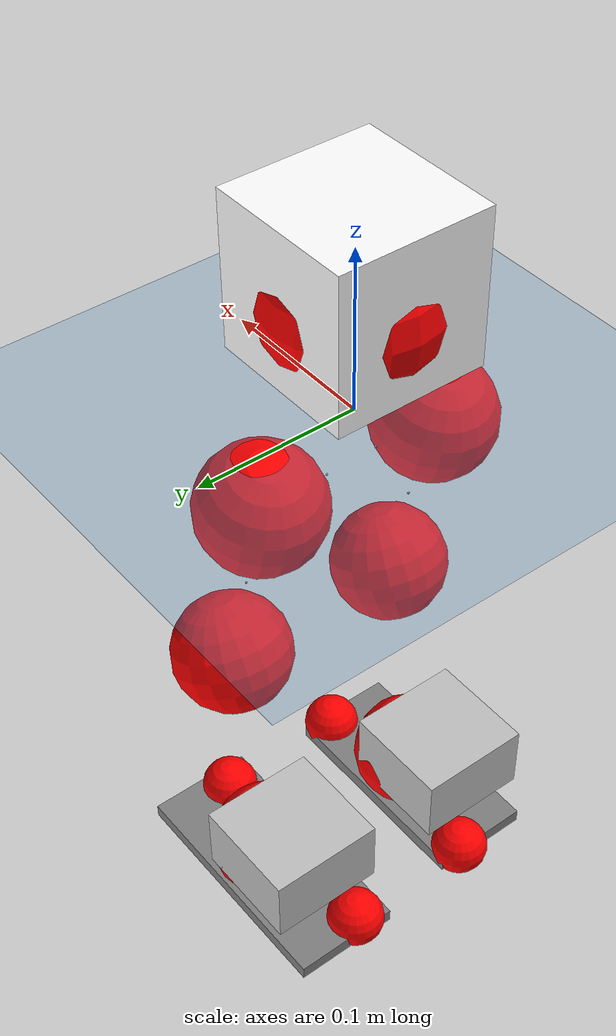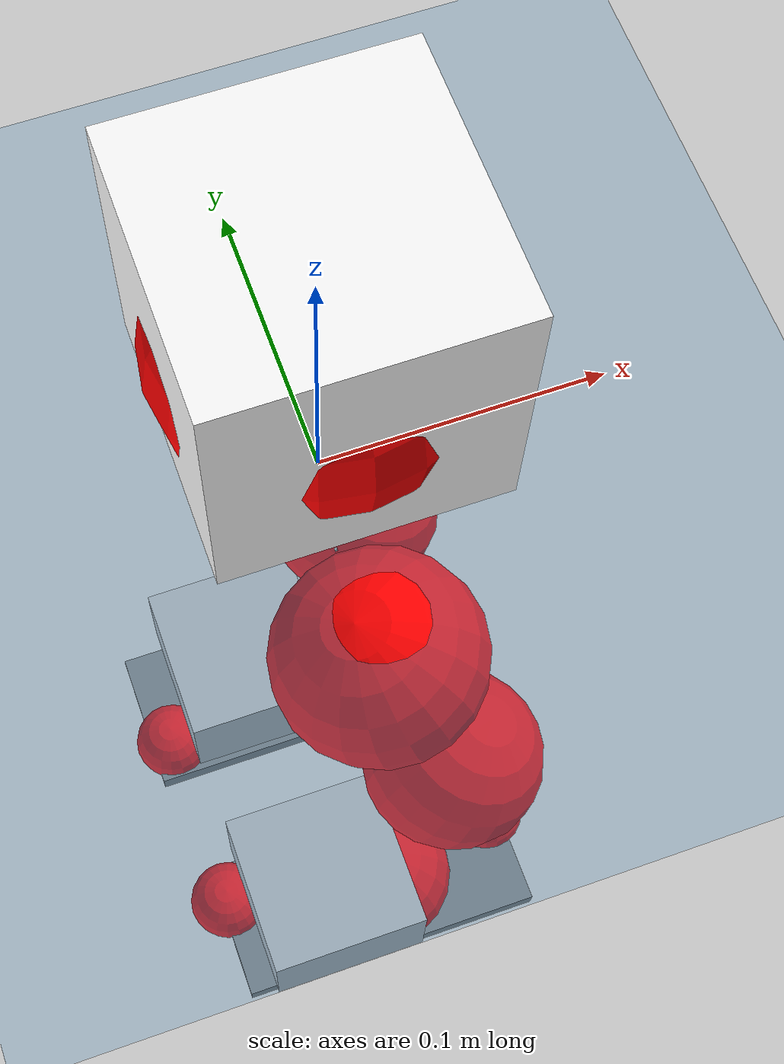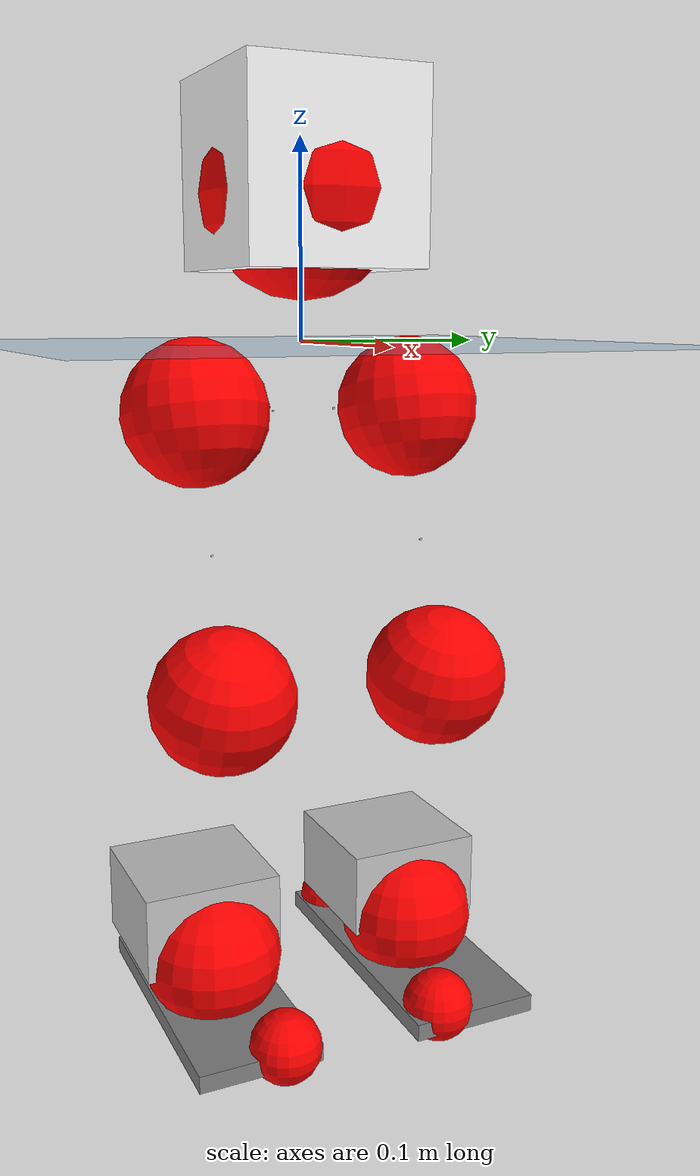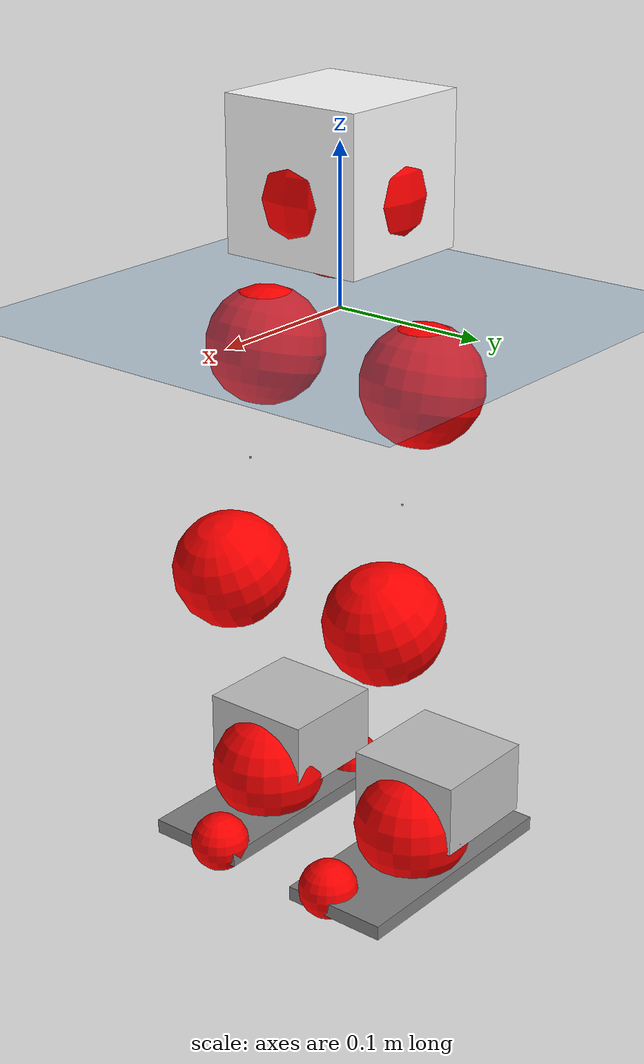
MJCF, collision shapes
<mujoco model="pi_12dof_release_v1">
  <compiler angle="radian" assetdir="assets" balanceinertia="true" inertiafromgeom="false"/>

  <option timestep="0.005" density="1.2" viscosity="2e-05"/>

  <size nkey="1"/>

  <visual>
    <quality shadowsize="8192"/>
    <map shadowclip="0.5"/>
  </visual>

  <default>
    <default class="/">
      <joint armature="0.01" damping="0.01" frictionloss="0.01"/>
      <geom contype="0" conaffinity="0" group="1" solref="-1000 -80"/>
      <site size="0.01 0.005 0.005" group="5"/>
      <general forcelimited="true" biastype="affine" gainprm="20" biasprm="0 -20 -0.5"/>
      <default class="foot">
        <geom size="0.0845 0.036 0.005" type="box" condim="6" group="4" priority="1" friction="0.9 0.2 0.2" solimp="0.015 1 0.005"/>
      </default>
      <default class="reward_collision_sphere">
        <geom group="5" rgba="1 0 0 1"/>
      </default>
    </default>
  </default>

  <asset>
    <texture type="skybox" colorspace="auto" name="//unnamed_texture_0" builtin="gradient" rgb1="0.95 0.95 0.95" rgb2="0.95 0.95 0.95" width="100" height="600"/>
    <texture type="2d" colorspace="auto" name="texplane" builtin="checker" rgb1="0.345 0.575 0.748" rgb2="0.345 0.575 0.748" markrgb="1 1 1" width="512" height="512"/>
    <material name="MatPlane" class="/" texture="texplane" texuniform="true" texrepeat="2 2" specular="0.9"/>
    <mesh name="baselink_1" class="/" file="baselink_1.STL"/>
    <mesh name="r_hip_pitch_link" class="/" file="r_hip_pitch_link.STL"/>
    <mesh name="r_hip_roll_link" class="/" file="r_hip_roll_link.STL"/>
    <mesh name="r_thigh_link" class="/" file="r_thigh_link.STL"/>
    <mesh name="r_calf_link" class="/" file="r_calf_link.STL"/>
    <mesh name="r_ankle_pitch_link" class="/" file="r_ankle_pitch_link.STL"/>
    <mesh name="r_ankle_roll_link" class="/" file="r_ankle_roll_link.STL"/>
    <mesh name="l_hip_pitch_link" class="/" file="l_hip_pitch_link.STL"/>
    <mesh name="l_hip_roll_link" class="/" file="l_hip_roll_link.STL"/>
    <mesh name="l_thigh_link" class="/" file="l_thigh_link.STL"/>
    <mesh name="l_calf_link" class="/" file="l_calf_link.STL"/>
    <mesh name="l_ankle_pitch_link" class="/" file="l_ankle_pitch_link.STL"/>
    <mesh name="l_ankle_roll_link" class="/" file="l_ankle_roll_link.STL"/>
  </asset>

  <worldbody>
    <geom name="floor" class="/" size="100 100 0.125" type="plane" group="0" material="MatPlane"/>
    <light name="toplight_shadow" class="/" pos="0 0 5" dir="0.0990148 0.0990148 -0.990148" type="directional" ambient="0.04 0.04 0.04" diffuse="0.55 0.55 0.55" specular="0.12 0.12 0.12"/>
    <light name="toplight_fill" class="/" pos="0 0 5" dir="0.0990148 0.0990148 -0.990148" type="directional" castshadow="false" ambient="0.04 0.04 0.04" diffuse="0.3 0.3 0.3" specular="0.08 0.08 0.08"/>
    <body name="trunk" pos="-2.31643e-05 0.00086684 -0.000136058" quat="1 0.000165241 2.60656e-05 -0.000319376">
      <inertial pos="0.00202943 -0.000886386 0.0412769" quat="0.695512 0.00889642 0.00917548 0.718401" mass="1.7783" diaginertia="0.0102228 0.00240957 0.00475783"/>
      <joint name="//unnamed_joint_0" type="free"/>
      <geom name="//unnamed_geom_1" class="/" type="mesh" density="0" rgba="1 1 1 1" mesh="baselink_1"/>
      <geom name="//unnamed_geom_2" class="/" size="0.046803 0.046803 0.046803" pos="0 0 0.0822991" type="box" rgba="1 1 1 1"/>
      <geom name="//unnamed_geom_3" class="reward_collision_sphere" size="0.0514833" pos="0 0 0.0720117"/>
      <site name="imu" class="/" pos="0.000966146 0.00128829 -0.00241298" size="0.0093606"/>
      <camera name="track" class="/" pos="0 -1.53793 0" quat="0.707107 0.707107 0 0" mode="trackcom"/>
      <camera name="ego_camera" class="/" pos="0.0757858 0 0.185173" quat="-0.5 -0.5 0.5 0.5"/>
      <body name="r_hip_pitch_link" pos="0.000632288 -0.0167052 -0.0342547" quat="0.992199 0.000101254 -0.124663 -4.90367e-05">
        <inertial pos="0.000749457 -0.0423771 0.000240497" quat="-0.0192137 0.705745 -0.0283283 0.707639" mass="0.302237" diaginertia="0.000113616 2.62619e-05 9.44484e-05"/>
        <joint name="r_hip_pitch_joint" class="/" pos="0 0 0" axis="0.00363778 -0.999984 0.00433325" range="-1.75053 1.25824" armature="0.00939301" damping="0.0117081" frictionloss="0.00895532"/>
        <geom name="//unnamed_geom_4" class="/" type="mesh" density="0" rgba="0.75294 0.75294 0.75294 1" mesh="r_hip_pitch_link"/>
        <geom name="//unnamed_geom_5" class="/" size="0.00046803 0.00046803 0.00046803" type="box" rgba="0.75294 0.75294 0.75294 1"/>
        <body name="r_hip_roll_link" pos="0.000557223 -0.042004 9.91024e-05" quat="1 -1.74385e-05 -3.21907e-07 4.93467e-06">
          <inertial pos="-0.000881584 -0.000494816 -0.0638916" quat="0.706017 -0.0800862 -0.0821159 0.698844" mass="0.316221" diaginertia="0.000352758 7.50926e-05 0.000147408"/>
          <joint name="r_hip_roll_joint" class="/" pos="0 0 0" axis="-1 -0.000500158 -0.000308796" range="-0.106947 0.491075" armature="0.00949896" damping="0.00951765" frictionloss="0.00943088"/>
          <geom name="//unnamed_geom_6" class="/" type="mesh" density="0" rgba="0.75294 0.75294 0.75294 1" mesh="r_hip_roll_link"/>
          <geom name="//unnamed_geom_7" class="/" size="0.00046803 0.00046803 0.00046803" type="box" rgba="0.75294 0.75294 0.75294 1"/>
          <geom name="//unnamed_geom_8" class="reward_collision_sphere" size="0.0374424"/>
          <body name="r_thigh_link" pos="-0.000229021 0.00109009 -0.0712605" quat="1 -0.00037135 -0.000233525 0.0001396">
            <inertial pos="-0.000254263 0.000664009 -0.0481422" quat="0.738038 0.674756 0.00197319 6.41329e-05" mass="0.0929621" diaginertia="0.00013095 2.53091e-05 6.74183e-05"/>
            <joint name="r_thigh_joint" class="/" pos="0 0 0" axis="0.00490168 0.00280048 -0.999984" range="-0.300675 0.577424" armature="0.00956787" damping="0.00568953" frictionloss="0.00941684"/>
            <geom name="//unnamed_geom_9" class="/" type="mesh" density="0" rgba="0.75294 0.75294 0.75294 1" mesh="r_thigh_link"/>
            <geom name="//unnamed_geom_10" class="/" size="0.00046803 0.00046803 0.00046803" type="box" rgba="0.75294 0.75294 0.75294 1"/>
            <body name="r_calf_link" pos="-8.4002e-05 -0.0016302 -0.0722848" quat="0.947639 1.4357e-05 0.319342 -3.91479e-05">
              <inertial pos="-0.00116326 -0.000246019 -0.0718249" quat="0.999984 -0.00309718 0.000127465 0.00476229" mass="0.666244" diaginertia="0.00367063 0.000926495 0.000200929"/>
              <joint name="r_calf_joint" class="/" pos="0 0 0" axis="0.000826936 -1 0.000278217" range="-1.64979 0.658124" armature="0.00957705" damping="0.00210578" frictionloss="0.00952931"/>
              <geom name="//unnamed_geom_11" class="/" type="mesh" density="0" rgba="0.75294 0.75294 0.75294 1" mesh="r_calf_link"/>
              <geom name="//unnamed_geom_12" class="/" size="0.00046803 0.00046803 0.00046803" type="box" rgba="0.75294 0.75294 0.75294 1"/>
              <geom name="//unnamed_geom_13" class="reward_collision_sphere" size="0.0374424"/>
              <body name="r_ankle_pitch_link" pos="0.00103323 1.64075e-05 -0.144664" quat="0.980059 -5.28133e-06 -0.198704 3.38966e-05">
                <inertial pos="0.00576541 0.00234222 -0.00070453" quat="0.00230926 0.707563 -0.00210519 0.706644" mass="0.143112" diaginertia="0.000322656 5.94986e-05 0.000138859"/>
                <joint name="r_ankle_pitch_joint" class="/" pos="0 0 0" axis="-0.000134328 -0.999995 -0.00303675" range="-1.2835 0.485216" armature="0.00929882" damping="0.0076428" frictionloss="0.00976256"/>
                <geom name="//unnamed_geom_14" class="/" type="mesh" density="0" rgba="0.75294 0.75294 0.75294 1" mesh="r_ankle_pitch_link"/>
                <geom name="//unnamed_geom_15" class="/" size="0.0365063 0.0374424 0.0234015" type="box" rgba="0.75294 0.75294 0.75294 1"/>
                <body name="r_ankle_roll_link" pos="0.0761515 0.00222735 -0.00016973" quat="1 4.47645e-06 -2.42173e-05 -4.29554e-06">
                  <inertial pos="-0.0250072 -1.46981e-05 -0.0154437" quat="0.560019 0.430851 0.433622 0.559213" mass="0.424322" diaginertia="0.00117353 0.000277892 0.000323715"/>
                  <joint name="r_ankle_roll_joint" class="/" pos="0 0 0" axis="-0.999988 -0.000212034 -0.00493245" range="-0.14387 0.164221" armature="0.00950556" damping="0.00918954" frictionloss="0.00942889"/>
                  <geom name="//unnamed_geom_16" class="/" type="mesh" density="0" rgba="0.75294 0.75294 0.75294 1" mesh="r_ankle_roll_link"/>
                  <geom name="//unnamed_geom_17" class="/" type="mesh" rgba="0.75294 0.75294 0.75294 1" mesh="r_ankle_roll_link"/>
                  <geom name="right_foot" class="foot" size="0.0736399 0.0331342 0.00467126" pos="-0.0515343 0 -0.0452645"/>
                  <geom name="//unnamed_geom_19" class="reward_collision_sphere" size="0.0374424" pos="-0.0505238 0 -0.0205748"/>
                  <geom name="//unnamed_geom_20" class="reward_collision_sphere" size="0.0187212" pos="0.0151572 0.0153793 -0.0411495"/>
                  <geom name="//unnamed_geom_21" class="reward_collision_sphere" size="0.0187212" pos="-0.121257 0.0153793 -0.0411495"/>
                  <site name="right_foot" class="foot" pos="-0.0515343 0 -0.0452645" size="0.0093606"/>
                </body>
              </body>
            </body>
          </body>
        </body>
      </body>
      <body name="l_hip_pitch_link" pos="-0.00072368 0.0180748 -0.0342146" quat="0.992213 0.000378974 -0.124554 0.000200938">
        <inertial pos="0.000912464 0.0408526 -6.89101e-05" quat="-0.0387434 0.705587 0.0294798 0.706949" mass="0.321098" diaginertia="0.000135164 2.79488e-05 0.000115328"/>
        <joint name="l_hip_pitch_joint" class="/" pos="0 0 0" axis="0.000626653 1 1.74089e-05" stiffness="0.00167925" range="-1.26171 1.75465" armature="0.00897918" damping="0.00874556" frictionloss="0.00935537"/>
        <geom name="//unnamed_geom_22" class="/" type="mesh" density="0" rgba="0.75294 0.75294 0.75294 1" mesh="l_hip_pitch_link"/>
        <geom name="//unnamed_geom_23" class="/" size="0.00046803 0.00046803 0.00046803" type="box" rgba="0.75294 0.75294 0.75294 1"/>
        <body name="l_hip_roll_link" pos="0.000720477 0.042824 -0.000603536" quat="1 4.86719e-05 6.59432e-06 -6.97094e-05">
          <inertial pos="-0.00157283 5.61286e-05 -0.0633425" quat="0.697678 -0.0761376 -0.0788809 0.707973" mass="0.321105" diaginertia="0.000353038 7.53505e-05 0.000148721"/>
          <joint name="l_hip_roll_joint" class="/" pos="0 0 0" axis="-1 0.000879868 -0.000350392" range="-0.508975 0.115164" armature="0.00895681" damping="0.00106793" frictionloss="0.00918915"/>
          <geom name="//unnamed_geom_24" class="/" type="mesh" density="0" rgba="0.75294 0.75294 0.75294 1" mesh="l_hip_roll_link"/>
          <geom name="//unnamed_geom_25" class="/" size="0.00046803 0.00046803 0.00046803" type="box" rgba="0.75294 0.75294 0.75294 1"/>
          <geom name="//unnamed_geom_26" class="reward_collision_sphere" size="0.0374424"/>
          <body name="l_thigh_link" pos="0.000341135 -0.000210355 -0.0717466" quat="1 -3.12777e-05 -5.61905e-05 -9.25956e-05">
            <inertial pos="0.000289245 -0.00154577 -0.0497464" quat="0.67511 0.737717 0.000153039 -0.000237028" mass="0.0921022" diaginertia="0.000131639 2.54515e-05 6.67133e-05"/>
            <joint name="l_thigh_joint" class="/" pos="0 0 0" axis="0.00012623 -0.000919813 -1" range="-0.601756 0.29714" armature="0.00965288" damping="0.00312043" frictionloss="0.00942398"/>
            <geom name="//unnamed_geom_27" class="/" type="mesh" density="0" rgba="0.75294 0.75294 0.75294 1" mesh="l_thigh_link"/>
            <geom name="//unnamed_geom_28" class="/" size="0.00046803 0.00046803 0.00046803" type="box" rgba="0.75294 0.75294 0.75294 1"/>
            <body name="l_calf_link" pos="-0.000544456 0.000831327 -0.0730303" quat="0.947672 0.000411936 0.319246 2.74927e-05">
              <inertial pos="0.00032177 0.00146804 -0.0720322" quat="0.999982 0.00206045 -0.000964671 0.00552338" mass="0.666392" diaginertia="0.00366963 0.000929314 0.000200405"/>
              <joint name="l_calf_joint" class="/" pos="0 0 0" axis="0.000872969 0.999999 0.000573289" range="-0.653512 1.65043" armature="0.00930326" damping="0.00884856" frictionloss="0.00940402"/>
              <geom name="//unnamed_geom_29" class="/" type="mesh" density="0" rgba="0.75294 0.75294 0.75294 1" mesh="l_calf_link"/>
              <geom name="//unnamed_geom_30" class="/" size="0.00046803 0.00046803 0.00046803" type="box" rgba="0.75294 0.75294 0.75294 1"/>
              <geom name="//unnamed_geom_31" class="reward_collision_sphere" size="0.0374424"/>
              <body name="l_ankle_pitch_link" pos="0.000266973 0.000488327 -0.143178" quat="0.980062 -2.87412e-06 -0.19869 -1.43792e-05">
                <inertial pos="0.00493009 -0.000290816 0.000140457" quat="-0.00244789 0.707234 0.00280808 0.706969" mass="0.144438" diaginertia="0.000323162 5.95754e-05 0.000138205"/>
                <joint name="l_ankle_pitch_joint" class="/" pos="0 0 0" axis="-0.000205588 1 0.000646054" range="-0.511425 1.30239" armature="0.00933003" damping="0.0082814" frictionloss="0.00934361"/>
                <geom name="//unnamed_geom_32" class="/" type="mesh" density="0" rgba="0.75294 0.75294 0.75294 1" mesh="l_ankle_pitch_link"/>
                <geom name="//unnamed_geom_33" class="/" size="0.0365063 0.0374424 0.0234015" type="box" rgba="0.75294 0.75294 0.75294 1"/>
                <body name="l_ankle_roll_link" pos="0.0757896 9.12082e-05 0.000175989" quat="1 2.39885e-05 -7.64386e-05 8.64421e-05">
                  <inertial pos="-0.0245063 -0.00044249 -0.0154422" quat="0.559508 0.430995 0.434591 0.55886" mass="0.426411" diaginertia="0.00118137 0.000279748 0.00032232"/>
                  <joint name="l_ankle_roll_joint" class="/" pos="0 0 0" axis="-0.999995 -0.00305776 0.000801359" stiffness="0.000826157" range="-0.162005 0.151782" armature="0.00927593" damping="0.00492438" frictionloss="0.00957841"/>
                  <geom name="//unnamed_geom_34" class="/" type="mesh" density="0" rgba="0.75294 0.75294 0.75294 1" mesh="l_ankle_roll_link"/>
                  <geom name="//unnamed_geom_35" class="/" type="mesh" rgba="0.75294 0.75294 0.75294 1" mesh="l_ankle_roll_link"/>
                  <geom name="left_foot" class="foot" size="0.0808122 0.0348795 0.00466256" pos="-0.0515343 0 -0.0452645"/>
                  <geom name="//unnamed_geom_37" class="reward_collision_sphere" size="0.0374424" pos="-0.0505238 0 -0.0205748"/>
                  <geom name="//unnamed_geom_38" class="reward_collision_sphere" size="0.0187212" pos="0.0151572 -0.0153793 -0.0411495"/>
                  <geom name="//unnamed_geom_39" class="reward_collision_sphere" size="0.0187212" pos="-0.121257 -0.0153793 -0.0411495"/>
                  <site name="left_foot" class="foot" pos="-0.0515343 0 -0.0452645" size="0.0093606"/>
                </body>
              </body>
            </body>
          </body>
        </body>
      </body>
    </body>
  </worldbody>

  <contact>
    <pair class="/" geom1="floor" geom2="right_foot" name="//unnamed_contact_1"/>
    <pair class="/" geom1="floor" geom2="left_foot" name="//unnamed_contact_0"/>
  </contact>

  <actuator>
    <general name="r_hip_pitch_joint" class="/" joint="r_hip_pitch_joint" forcerange="-19.4231 19.4231" gainprm="18.7549" biasprm="0 -18.7549 -0.472743"/>
    <general name="r_hip_roll_joint" class="/" joint="r_hip_roll_joint" forcerange="-19.6618 19.6618" gainprm="18.7549" biasprm="0 -18.7549 -0.472743"/>
    <general name="r_thigh_joint" class="/" joint="r_thigh_joint" forcerange="-19.6911 19.6911" gainprm="18.7549" biasprm="0 -18.7549 -0.472743"/>
    <general name="r_calf_joint" class="/" joint="r_calf_joint" forcerange="-19.5117 19.5117" gainprm="18.7549" biasprm="0 -18.7549 -0.472743"/>
    <general name="r_ankle_pitch_joint" class="/" joint="r_ankle_pitch_joint" forcerange="-19.8358 19.8358" gainprm="18.7549" biasprm="0 -18.7549 -0.472743"/>
    <general name="r_ankle_roll_joint" class="/" joint="r_ankle_roll_joint" forcerange="-19.4602 19.4602" gainprm="18.7549" biasprm="0 -18.7549 -0.472743"/>
    <general name="l_hip_pitch_joint" class="/" joint="l_hip_pitch_joint" forcerange="-19.6373 19.6373" gainprm="18.7549" biasprm="0 -18.7549 -0.472743"/>
    <general name="l_hip_roll_joint" class="/" joint="l_hip_roll_joint" forcerange="-19.9932 19.9932" gainprm="18.7549" biasprm="0 -18.7549 -0.472743"/>
    <general name="l_thigh_joint" class="/" joint="l_thigh_joint" forcerange="-19.6191 19.6191" gainprm="18.7549" biasprm="0 -18.7549 -0.472743"/>
    <general name="l_calf_joint" class="/" joint="l_calf_joint" forcerange="-19.9394 19.9394" gainprm="18.7549" biasprm="0 -18.7549 -0.472743"/>
    <general name="l_ankle_pitch_joint" class="/" joint="l_ankle_pitch_joint" forcerange="-19.7091 19.7091" gainprm="18.7549" biasprm="0 -18.7549 -0.472743"/>
    <general name="l_ankle_roll_joint" class="/" joint="l_ankle_roll_joint" forcerange="-20.2621 20.2621" gainprm="18.7549" biasprm="0 -18.7549 -0.472743"/>
  </actuator>

  <sensor>
    <gyro site="imu" name="imu_angular_velocity"/>
    <velocimeter site="imu" name="imu_linear_velocity"/>
    <framelinvel objtype="site" objname="left_foot" name="left_foot_global_linear_velocity"/>
    <framelinvel objtype="site" objname="right_foot" name="right_foot_global_linear_velocity"/>
  </sensor>

  <keyframe>
    <key name="home" qpos="0 0 0.291 1 0 0 0 0.4 0 0 -0.8 0.4 0 -0.4 0 0 0.8 -0.4 0"/>
  </keyframe>
</mujoco>
